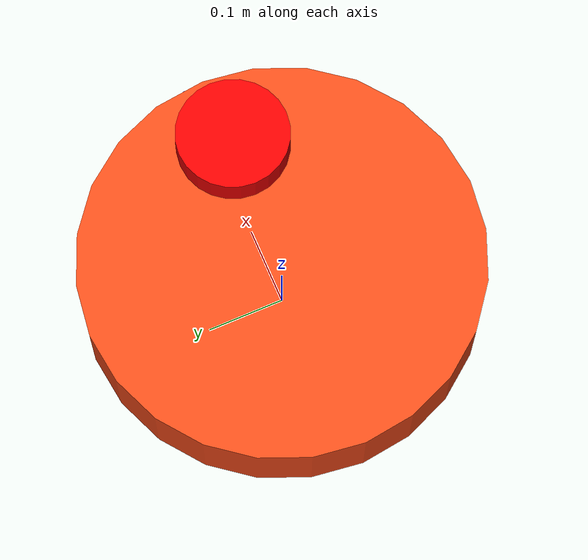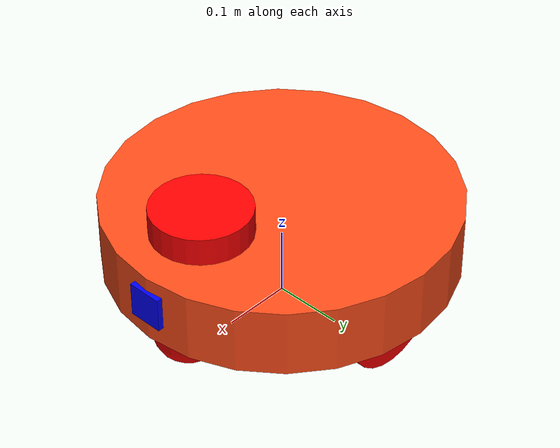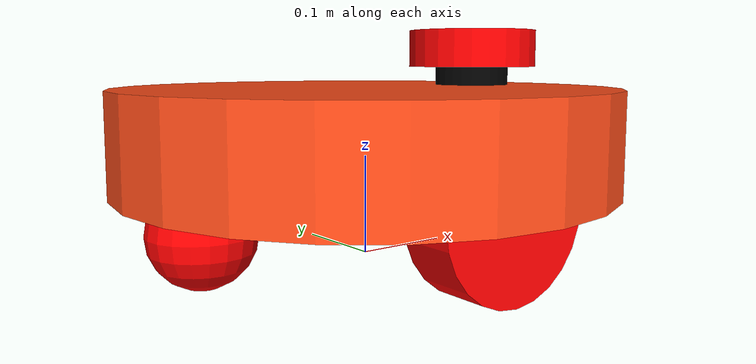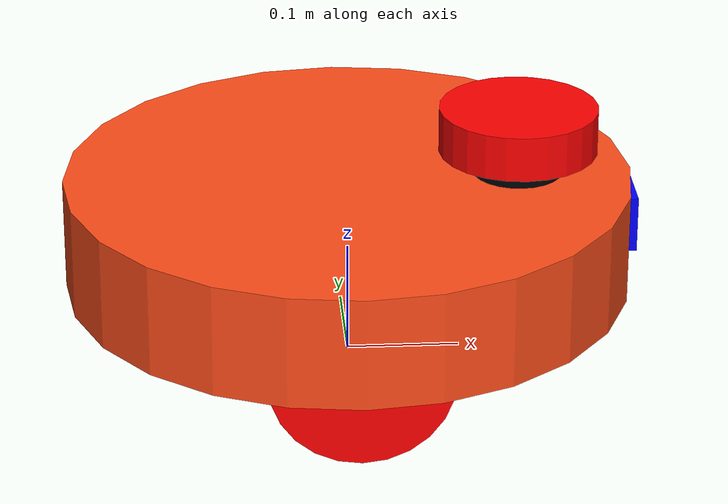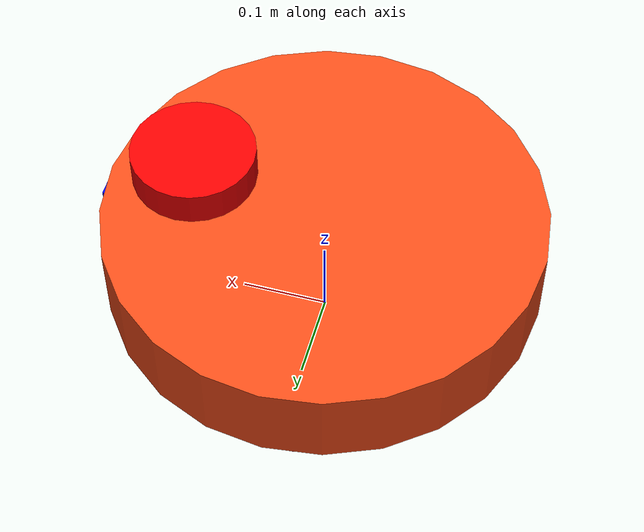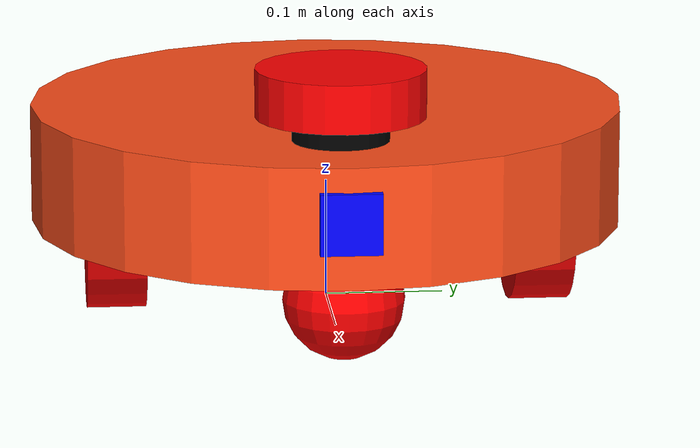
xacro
<?xml version="1.0"?>
<robot xmlns:xacro="http://www.ros.org/wiki/xacro" name="round_bot">

  <xacro:include filename="$(find round_bot)/description/inertial_xacros.xacro"/>

  <link name="base_footprint"/>

  <joint name="chassis_joint" type="fixed">
    <parent link="base_footprint"/>
    <child link="chassis"/>
    <origin xyz="0.0 0.0 0.0" rpy="0.0 0.0 0.0"/>
  </joint>

  <link name="chassis">
    <visual>
      <origin xyz="0.0 0.0 0.12" rpy="0.0 0.0 0.0"/>
      <geometry>
        <cylinder radius="${chassis_radius}" length="${chassis_length}"/>
      </geometry>
      <material name ="Orange">
        <color rgba = "1.0 0.3 0.1 1.0"/>
      </material>
    </visual>
    <collision>
      <origin xyz="0.0 0.0 0.12" rpy="0.0 0.0 0.0"/>
      <geometry>
        <cylinder radius="${chassis_radius}" length="${chassis_length}"/>
      </geometry>
      <contact_coefficients mu1 = "1" mu2 = "1" kp = "1e+13.0" kd = "1.0"/>
    </collision>
    <xacro:inertial_chassis_cylinder chassis_mass="${chassis_mass}" chassis_length="${chassis_length}" chassis_radius="${chassis_radius}">
      <origin xyz="0 0 0.12" rpy="0 0 0"/>
    </xacro:inertial_chassis_cylinder>
  </link>

  <gazebo reference = "chassis">
    <material>Gazebo/Orange</material>
  </gazebo>

  <joint name="left_wheel_joint" type="continuous">
    <parent link="chassis"/>
    <child link="left_wheel"/>
    <axis xyz="0 0 1.0"/>
    <origin xyz="0.0 0.18 0.075" rpy="-1.57 0.0 0.0"/>
  </joint>

  <link name="left_wheel">
    <visual>
      <geometry>
        <cylinder radius="${wheel_radius}" length="${wheel_length}"/>
      </geometry>
      <material name = "Red">
        <color rgba = "1.0 0.0 0.0 1.0"/>
      </material>
    </visual>
    <collision>
      <geometry>
        <sphere radius="${wheel_radius}"/>
      </geometry>
      <contact_coefficients mu1 = "0" kp = "1000.0" kd = "1.0"/>
    </collision>
    <xacro:inertial_wheel_cylinder wheel_mass="${wheel_mass}" wheel_length="${wheel_length}" wheel_radius="${wheel_radius}">
      <origin xyz="0 0 0" rpy="0 0 0"/>
    </xacro:inertial_wheel_cylinder>
  </link>

  <gazebo reference = "left_wheel">
    <material>Gazebo/Red</material>
  </gazebo>

  <joint name="right_wheel_joint" type="continuous">
    <parent link="chassis"/>
    <child link="right_wheel"/>
    <axis xyz="0.0 0.0 1.0"/>
    <origin xyz="0.0 -0.18 0.075" rpy="-1.57 0.0 0.0"/>
  </joint>

  <link name="right_wheel">
    <visual>
      <geometry>
        <cylinder radius="${wheel_radius}" length="${wheel_length}"/>
      </geometry>
      <material name = "Red">
        <color rgba = "1.0 0.0 0.0 1.0"/>
      </material>
    </visual>
    <collision>
      <geometry>
        <sphere radius="${wheel_radius}"/>
      </geometry>
      <contact_coefficients mu = "0" kp = "1000.0" kd = "1.0"/>
    </collision>
    <xacro:inertial_wheel_cylinder wheel_mass="${wheel_mass}" wheel_length="${wheel_length}" wheel_radius="${wheel_radius}">
      <origin xyz="0 0 0" rpy="0 0 0"/>
    </xacro:inertial_wheel_cylinder>
  </link>

  <gazebo reference = "right_wheel">
    <slip1 value="0.5" />
    <slip2 value="0.5" />
    <material>Gazebo/Red</material>
  </gazebo>

  <joint name="front_caster_joint" type="fixed">
    <parent link="chassis"/>
    <child link="front_caster_link"/>
    <origin xyz="0.18 0.0 0.0452" rpy="0 0 0"/>
    <mu1 value="0.001"/>
    <mu2 value="0.001"/>
  </joint>

  <link name="front_caster_link">
    <visual>
      <geometry>
        <sphere radius="${caster_radius}"/>
      </geometry>
      <material name="Red">
        <color rgba="1.0 0.0 0.0 1.0"/>
      </material>
    </visual>
    <collision>
      <geometry>
        <sphere radius="${caster_radius}"/>
      </geometry>
      <contact_coefficients mu="0" kp="1000.0" kd="1.0"/>
    </collision>

    <xacro:inertial_sphere caster_mass="${caster_mass}" caster_radius="${caster_radius}">
      <origin xyz="0 0 0" rpy="0 0 0"/>
    </xacro:inertial_sphere>
  </link>

  <gazebo reference = "front_caster_link">
    <material>Gazebo/Red</material>
  </gazebo>

  <joint name="back_caster_joint" type="fixed">
    <parent link="chassis"/>
    <child link="back_caster_link"/>
    <origin xyz="-0.18 0.0 0.0452" rpy="0 0 0"/>
    <mu1 value="0.001"/>
    <mu2 value="0.001"/>
  </joint>

  <link name="back_caster_link">
    <visual>
      <geometry>
        <sphere radius="${caster_radius}"/>
      </geometry>
      <material name="Red">
        <color rgba="1.0 0.0 0.0 1.0"/>
      </material>
    </visual>
    <collision>
      <geometry>
        <sphere radius="${caster_radius}"/>
      </geometry>
      <contact_coefficients mu="0" kp="1000.0" kd="1.0"/>
    </collision>

    <xacro:inertial_sphere caster_mass="${caster_mass}" caster_radius="${caster_radius}">
      <origin xyz="0 0 0" rpy="0 0 0"/>
    </xacro:inertial_sphere>
  </link>

  <gazebo reference = "back_caster_link">
    <material>Gazebo/Red</material>
  </gazebo>

  <joint name="mount_joint" type="fixed">
    <parent link="chassis"/>
    <child link="mount_link"/>
    <origin xyz="0.15 0.0 0.18" rpy="0.0 0.0 0.0"/>
  </joint>

  <link name="mount_link">
    <visual>
      <geometry>
        <cylinder radius="${mount_radius}" length="${mount_length}"/>
      </geometry>
      <material name="Black">
        <color rgba="0.0 0.0 0.0 1.0"/>
      </material>
    </visual>
    <collision>
      <geometry>
        <cylinder radius="${mount_radius}" length="${mount_length}"/>
      </geometry>
    </collision>
    <xacro:inertial_mount_cylinder mount_mass="${mount_mass}" mount_length="${mount_length}" mount_radius="${mount_radius}">
      <origin xyz="0 0 0" rpy="0 0 0"/>
    </xacro:inertial_mount_cylinder>
  </link>

  <gazebo reference = "mount_link">
    <material>Gazebo/Black</material>
  </gazebo>

  <link name="camera_link">
    <visual>
      <geometry>
        <box size="0.010 0.05 0.05"/>
      </geometry>
      <material name="blue">
        <color rgba="0 0 1 1"/>
      </material>
    </visual>
  </link>

  <joint name="camera_joint" type="fixed">
    <origin xyz="0.25 0.0 0.125" rpy="0 0 0"/>
    <parent link="chassis"/>
    <child link="camera_link"/>
  </joint>

  <joint name="camera_optical_joint" type="fixed">
    <origin xyz="0.0 0.0 0.0" rpy="-1.57 0.0 -1.57"/>
    <parent link="camera_link"/>
    <child link="camera_link_optical"/>
  </joint>

  <link name="camera_link_optical">

  </link>

  <!-- depth camera -->
  <gazebo reference="camera_link">
    <material>Gazebo/Blue</material>
    <sensor name="depth_camera" type="depth">
        <pose> 0 0 0 0 0 0 </pose>
        <visualize>true</visualize>
        <update_rate>5</update_rate>
        <camera>
          <horizontal_fov>1.089</horizontal_fov>
          <image>
            <format>B8G8R8</format>
            <width>640</width>
            <height>480</height>
          </image>
          <clip>
            <near>0.05</near>
            <far>8.0</far>
          </clip>
        </camera>
        <plugin name="camera_controller" filename="libgazebo_ros_camera.so">
          <frame_name>camera_link_optical</frame_name>
          <min_depth>0.1</min_depth>
          <max_depth>100.0</max_depth>
        </plugin>
      </sensor>
  </gazebo>

  <link name="lidar_link">
    <visual>
      <geometry>
        <cylinder radius="${lidar_radius}" length="${lidar_length}"/>
      </geometry>
      <material name="red">
        <color rgba="1 0 0 1"/>
      </material>
    </visual>

    <collision>
      <geometry>
        <cylinder radius="${lidar_radius}" length="${lidar_length}"/>
      </geometry>
    </collision>
    <xacro:inertial_lidar_cylinder lidar_mass="0.1" lidar_length="0.07" lidar_radius="0.1">
      <origin xyz="0 0 0" rpy="0 0 0"/>
    </xacro:inertial_lidar_cylinder>
  </link>

  <joint name="lidar_joint" type="fixed">
    <origin xyz="0.0 0 0.03" rpy="0 0.0 0.0"/>
    <parent link="mount_link"/>
    <child link="lidar_link"/>
  </joint>

  <!-- 3d lidar -->
  <gazebo reference="lidar_link">
    <material>Gazebo/Red</material>
    <sensor type="ray" name="3d_lidar">
      <pose>0 0 0 0 0 0</pose>
      <visualize>true</visualize>
      <ray>
        <scan>
          <horizontal>
            <samples>180</samples>
            <resolution>1</resolution>
              <min_angle>-3.14159</min_angle>
              <max_angle>3.14159</max_angle>
          </horizontal>
          <vertical>
            <samples>10</samples>
            <resolution>1</resolution>
            <min_angle>-0.3</min_angle>
            <max_angle>0.3</max_angle>
          </vertical>
        </scan>
        <range>
          <min>0.3</min>
          <max>2.5</max>
          <resolution>0.01</resolution>
        </range>
      </ray>
      <plugin name="gazebo_ros_block_laser_controller_1" filename="libgazebo_ros_velodyne_laser.so">
        <ros>
          <remapping>~/out:=velodyne_points</remapping>
          <qos>
            <topic name="velodyne_points">
              <publisher>
                <reliability>reliable</reliability>
              </publisher>
            </topic>
          </qos>
        </ros>
        <output_type>sensor_msgs/PointCloud2</output_type>
        <alwaysOn>true</alwaysOn>
        <updateRate>10</updateRate>
        <topicName>velodyne_points</topicName>
        <frame_name>lidar_link</frame_name>
      </plugin>
    </sensor>
  </gazebo>

  <!-- 2d lidar -->
  <gazebo reference="lidar_link">
    <material>Gazebo/Red</material>
      <sensor name="2d_lidar" type="ray">
      <pose> 0 0 0 0 0 0 </pose>
      <visualize>true</visualize>
      <update_rate>10.0</update_rate>
      <ray>
        <scan>
          <horizontal>
            <samples>360</samples>
            <resolution>1.000000</resolution>
            <min_angle>-3.14159</min_angle>
            <max_angle>3.14159</max_angle>
          </horizontal>
        </scan>
        <range>
          <min>0.3</min>
          <max>2.5</max>
          <resolution>0.1</resolution>
        </range>
        <noise>
          <type>gaussian</type>
          <mean>0.0</mean>
          <stddev>0.01</stddev>
        </noise>
      </ray>
      <plugin name="gazebo_ros_block_laser_controller_2" filename="libgazebo_ros_ray_sensor.so">
        <ros>
          <remapping>~/out:=scan</remapping>
        </ros>
        <output_type>sensor_msgs/LaserScan</output_type>
        <frame_name>lidar_link</frame_name>
      </plugin>
    </sensor>
  </gazebo>

  <gazebo>
    <plugin name='diff_drive' filename='libgazebo_ros_diff_drive.so'>
      <update_rate>10</update_rate>
      <left_joint>left_wheel_joint</left_joint>
      <right_joint>right_wheel_joint</right_joint>
      <wheel_separation>0.36</wheel_separation>
      <wheel_diameter>0.16</wheel_diameter>
      <max_wheel_torque>10</max_wheel_torque>
      <max_wheel_acceleration>1.0</max_wheel_acceleration>
      <publish_odom>true</publish_odom>
      <publish_odom_tf>true</publish_odom_tf>
      <publish_wheel_tf>true</publish_wheel_tf>
      <odometry_source>1</odometry_source>
      <odometry_frame>odom</odometry_frame>
      <robot_base_frame>base_footprint</robot_base_frame>
    </plugin>
  </gazebo>
</robot>

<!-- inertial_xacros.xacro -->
<robot xmlns:xacro="http://www.ros.org/wiki/xacro" name="round_bot">

    <!-- Specify some standard inertial calculations https://en.wikipedia.org/wiki/List_of_moments_of_inertia -->
    <!-- These make use of xacro's mathematical functionality -->
    <xacro:property name="wheel_radius" value="0.08"/>
    <xacro:property name="wheel_length" value="0.05"/>
    <xacro:property name="wheel_mass" value="0.75"/>
    <xacro:property name="chassis_radius" value="0.25"/>
    <xacro:property name="chassis_length" value="0.1"/>
    <xacro:property name="chassis_mass" value="2"/>
    <xacro:property name="mount_radius" value="0.04"/>
    <xacro:property name="mount_length" value="0.04"/>
    <xacro:property name="mount_mass" value="0.1"/>
    <xacro:property name="lidar_radius" value="0.07"/>
    <xacro:property name="lidar_length" value="0.04"/>
    <xacro:property name="lidar_mass" value="0.1"/>
    <xacro:property name="caster_mass" value="0.75"/>
    <xacro:property name="caster_radius" value="0.05"/>

    <xacro:macro name="inertial_sphere" params="caster_mass caster_radius *origin">
        <inertial>
            <xacro:insert_block name="origin"/>
            <mass value="${caster_mass}" />
            <inertia ixx="${(2/5) * caster_mass * (caster_radius*caster_radius)}" ixy="0.0" ixz="0.0"
                    iyy="${(2/5) * caster_mass * (caster_radius*caster_radius)}" iyz="0.0"
                    izz="${(2/5) * caster_mass * (caster_radius*caster_radius)}" />
        </inertial>
    </xacro:macro>

    <xacro:macro name="inertial_wheel_cylinder" params="wheel_mass wheel_length wheel_radius *origin">
        <inertial>
            <xacro:insert_block name="origin"/>
            <mass value="${wheel_mass}" />
            <inertia ixx="${(1/12) * wheel_mass * (3*wheel_radius*wheel_radius + wheel_length*wheel_length)}" ixy="0.0" ixz="0.0"
                    iyy="${(1/12) * wheel_mass * (3*wheel_radius*wheel_radius + wheel_length*wheel_length)}" iyz="0.0"
                    izz="${(1/2) * wheel_mass * (wheel_radius*wheel_radius)}" />
        </inertial>
    </xacro:macro>

    <xacro:macro name="inertial_chassis_cylinder" params="chassis_mass chassis_length chassis_radius *origin">
        <inertial>
            <xacro:insert_block name="origin"/>
            <mass value="${chassis_mass}" />
            <inertia ixx="${(1/12) * chassis_mass * (3*chassis_radius*chassis_radius + chassis_length*chassis_length)}" ixy="0.0" ixz="0.0"
                    iyy="${(1/12) * chassis_mass * (3*chassis_radius*chassis_radius + chassis_length*chassis_length)}" iyz="0.0"
                    izz="${(1/2) * chassis_mass * (chassis_radius*chassis_radius)}" />
        </inertial>
    </xacro:macro>

    <xacro:macro name="inertial_mount_cylinder" params="mount_mass mount_length mount_radius *origin">
        <inertial>
            <xacro:insert_block name="origin"/>
            <mass value="${mount_mass}" />
            <inertia ixx="${(1/12) * mount_mass * (3*mount_radius*mount_radius + mount_length*mount_length)}" ixy="0.0" ixz="0.0"
                    iyy="${(1/12) * mount_mass * (3*mount_radius*mount_radius + mount_length*mount_length)}" iyz="0.0"
                    izz="${(1/2) * mount_mass * (mount_radius*mount_radius)}" />
        </inertial>
    </xacro:macro>

    <xacro:macro name="inertial_lidar_cylinder" params="lidar_mass lidar_length lidar_radius *origin">
        <inertial>
            <xacro:insert_block name="origin"/>
            <mass value="${lidar_mass}" />
            <inertia ixx="${(1/12) * lidar_mass * (3*lidar_radius*lidar_radius + lidar_length*lidar_length)}" ixy="0.0" ixz="0.0"
                    iyy="${(1/12) * lidar_mass * (3*lidar_radius*lidar_radius + lidar_length*lidar_length)}" iyz="0.0"
                    izz="${(1/2) * lidar_radius * (lidar_radius*lidar_radius)}" />
        </inertial>
    </xacro:macro>

</robot>
